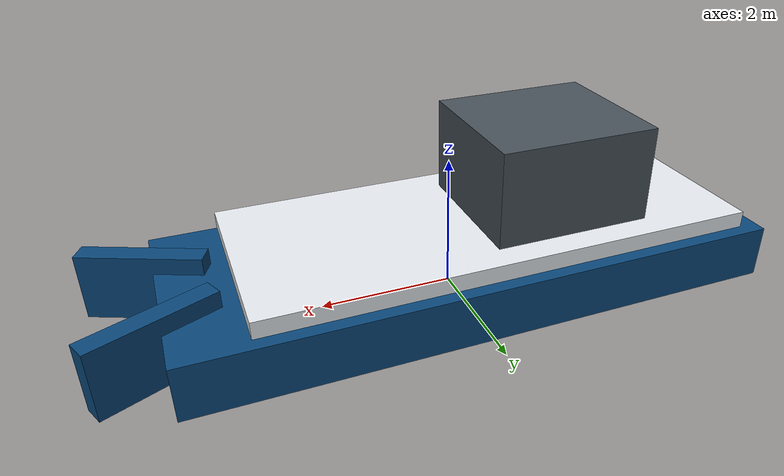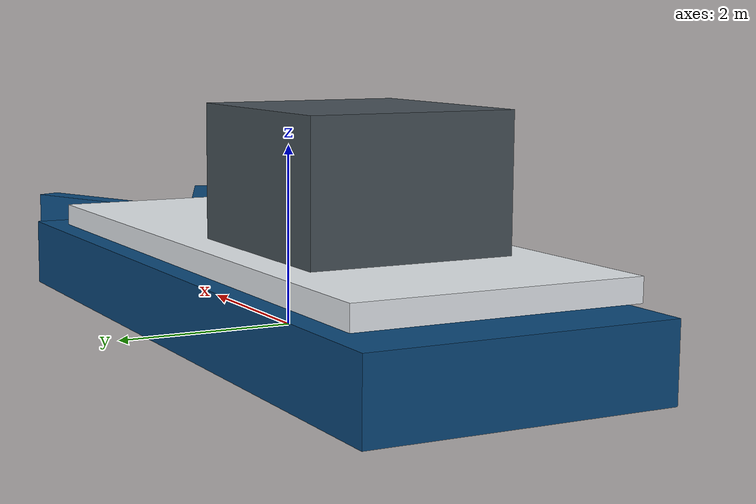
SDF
<?xml version="1.0"?>
<sdf version="1.10">
  <model name="scalable_capture_usv">
    <pose>0 0 0.5 0 0 0</pose>
    <link name="hull">
      <gravity>false</gravity>
      <inertial>
        <mass>260</mass>
        <inertia>
          <ixx>180</ixx><iyy>920</iyy><izz>1050</izz>
        </inertia>
      </inertial>
      <collision name="hull_collision">
        <pose>0 0 0 0 0 0</pose>
        <geometry><box><size>9 3.4 1.2</size></box></geometry>
      </collision>
      <visual name="lower_hull">
        <pose>-0.2 0 -0.15 0 0 0</pose>
        <geometry><box><size>8.8 3.2 0.8</size></box></geometry>
        <material>
          <ambient>0.03 0.12 0.2 1</ambient>
          <diffuse>0.04 0.28 0.48 1</diffuse>
          <specular>0.3 0.4 0.5 1</specular>
        </material>
      </visual>
      <visual name="deck">
        <pose>-0.5 0 0.45 0 0 0</pose>
        <geometry><box><size>7.4 3.0 0.25</size></box></geometry>
        <material><ambient>0.75 0.78 0.8 1</ambient><diffuse>0.9 0.92 0.94 1</diffuse></material>
      </visual>
      <visual name="cabin">
        <pose>-1.5 0 1.25 0 0 0</pose>
        <geometry><box><size>2.4 2.2 1.5</size></box></geometry>
        <material><ambient>0.15 0.18 0.2 1</ambient><diffuse>0.28 0.32 0.35 1</diffuse></material>
      </visual>
      <visual name="bow_left">
        <pose>4.3 0.8 0 0 0 0.42</pose>
        <geometry><box><size>1.8 0.3 1.0</size></box></geometry>
        <material><ambient>0.03 0.12 0.2 1</ambient><diffuse>0.04 0.28 0.48 1</diffuse></material>
      </visual>
      <visual name="bow_right">
        <pose>4.3 -0.8 0 0 0 -0.42</pose>
        <geometry><box><size>1.8 0.3 1.0</size></box></geometry>
        <material><ambient>0.03 0.12 0.2 1</ambient><diffuse>0.04 0.28 0.48 1</diffuse></material>
      </visual>
    </link>
    <plugin filename="libBoatWaveFollower.so" name="gz::sim::systems::BoatWaveFollower">
      <mean_z>0.68</mean_z>
      <heave_amplitude>0.06</heave_amplitude>
      <roll_amplitude>0.025</roll_amplitude>
      <pitch_amplitude>0.02</pitch_amplitude>
      <primary_frequency>0.9</primary_frequency>
      <secondary_frequency>1.35</secondary_frequency>
      <wave_number_x>0.24</wave_number_x>
      <wave_number_y>0.17</wave_number_y>
      <velocity_topic>cmd_vel</velocity_topic>
    </plugin>
  </model>
</sdf>
